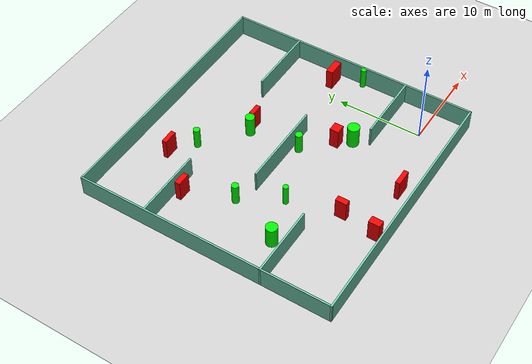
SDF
<sdf version="1.7">
 <world name="default">
  <light name="sun" type="directional">
   <pose>0 0 10 0 -0 0</pose>
   <diffuse>0.8 0.8 0.8 1</diffuse>
   <specular>0.2 0.2 0.2 1</specular>
   <attenuation>
    <range>1000</range>
    <constant>0.9</constant>
    <linear>0.01</linear>
    <quadratic>0.001</quadratic>
   </attenuation>
   <direction>-0.5 0.1 -0.9</direction>
   <spot><inner_angle>0</inner_angle><outer_angle>0</outer_angle><falloff>0</falloff></spot>
  </light>
  <model name="ground_plane">
   <static>1</static>
   <link name="link">
    <collision name="collision">
     <geometry><plane><normal>0 0 1</normal><size>100 100</size></plane></geometry>
     <surface>
      <contact><collide_bitmask>65535</collide_bitmask></contact>
      <friction><ode><mu>100</mu><mu2>50</mu2></ode></friction>
     </surface>
    </collision>
    <visual name="visual">
     <cast_shadows>0</cast_shadows>
     <geometry><plane><normal>0 0 1</normal><size>100 100</size></plane></geometry>
     <material>
      <script><uri>file://media/materials/scripts/gazebo.material</uri><name>Gazebo/Grey</name></script>
     </material>
    </visual>
   </link>
  </model>
  <gravity>0 0 -9.8</gravity>
  <magnetic_field>6e-06 2.3e-05 -4.2e-05</magnetic_field>
  <atmosphere type="adiabatic"/>
  <physics type="ode">
   <max_step_size>0.001</max_step_size>
   <real_time_factor>1</real_time_factor>
   <real_time_update_rate>1000</real_time_update_rate>
  </physics>
  <scene><ambient>0.4 0.4 0.4 1</ambient><background>0.7 0.7 0.7 1</background><shadows>1</shadows></scene>
  <spherical_coordinates>
   <surface_model>EARTH_WGS84</surface_model>
   <latitude_deg>0</latitude_deg>
   <longitude_deg>0</longitude_deg>
   <elevation>0</elevation>
   <heading_deg>0</heading_deg>
  </spherical_coordinates>
  <model name="my_base_walls">
   <link name="Wall_10">
    <collision name="Wall_10_Collision">
     <geometry><box><size>8.2 0.2 2.5</size></box></geometry>
     <pose>0 0 1.25 0 -0 0</pose>
    </collision>
    <visual name="Wall_10_Visual">
     <pose>0 0 1.25 0 -0 0</pose>
     <geometry><box><size>8.2 0.2 2.5</size></box></geometry>
     <material>
      <script><uri>file://media/materials/scripts/gazebo.material</uri><name>Gazebo/Grey</name></script>
      <ambient>0.435294 0.796078 0.67451 1</ambient>
     </material>
     <meta><layer>0</layer></meta>
    </visual>
    <pose>-11 -7 0 0 -0 0</pose>
   </link>
   <link name="Wall_12">
    <collision name="Wall_12_Collision">
     <geometry><box><size>8.2 0.2 2.5</size></box></geometry>
     <pose>0 0 1.25 0 -0 0</pose>
    </collision>
    <visual name="Wall_12_Visual">
     <pose>0 0 1.25 0 -0 0</pose>
     <geometry><box><size>8.2 0.2 2.5</size></box></geometry>
     <material>
      <script><uri>file://media/materials/scripts/gazebo.material</uri><name>Gazebo/Grey</name></script>
      <ambient>0.435294 0.796078 0.67451 1</ambient>
     </material>
     <meta><layer>0</layer></meta>
    </visual>
    <pose>-11 7 0 0 -0 0</pose>
   </link>
   <link name="Wall_14">
    <collision name="Wall_14_Collision">
     <geometry><box><size>8.2 0.2 2.5</size></box></geometry>
     <pose>0 0 1.25 0 -0 0</pose>
    </collision>
    <visual name="Wall_14_Visual">
     <pose>0 0 1.25 0 -0 0</pose>
     <geometry><box><size>8.2 0.2 2.5</size></box></geometry>
     <material>
      <script><uri>file://media/materials/scripts/gazebo.material</uri><name>Gazebo/Grey</name></script>
      <ambient>0.435294 0.796078 0.67451 1</ambient>
     </material>
     <meta><layer>0</layer></meta>
    </visual>
    <pose>11 7 0 0 -0 3.14159</pose>
   </link>
   <link name="Wall_16">
    <collision name="Wall_16_Collision">
     <geometry><box><size>10.2 0.2 2.5</size></box></geometry>
     <pose>0 0 1.25 0 -0 0</pose>
    </collision>
    <visual name="Wall_16_Visual">
     <pose>0 0 1.25 0 -0 0</pose>
     <geometry><box><size>10.2 0.2 2.5</size></box></geometry>
     <material>
      <script><uri>file://media/materials/scripts/gazebo.material</uri><name>Gazebo/Grey</name></script>
      <ambient>0.435294 0.796078 0.67451 1</ambient>
     </material>
     <meta><layer>0</layer></meta>
    </visual>
    <pose>0 0 0 0 -0 3.14159</pose>
   </link>
   <link name="Wall_2">
    <collision name="Wall_2_Collision">
     <geometry><box><size>30.2 0.2 2.5</size></box></geometry>
     <pose>0 0 1.25 0 -0 0</pose>
    </collision>
    <visual name="Wall_2_Visual">
     <pose>0 0 1.25 0 -0 0</pose>
     <geometry><box><size>30.2 0.2 2.5</size></box></geometry>
     <material>
      <script><uri>file://media/materials/scripts/gazebo.material</uri><name>Gazebo/Grey</name></script>
      <ambient>0.435294 0.796078 0.67451 1</ambient>
     </material>
     <meta><layer>0</layer></meta>
    </visual>
    <pose>0 -15 0 0 -0 3.14159</pose>
   </link>
   <link name="Wall_3">
    <collision name="Wall_3_Collision">
     <geometry><box><size>30.2 0.2 2.5</size></box></geometry>
     <pose>0 0 1.25 0 -0 0</pose>
    </collision>
    <visual name="Wall_3_Visual">
     <pose>0 0 1.25 0 -0 0</pose>
     <geometry><box><size>30.2 0.2 2.5</size></box></geometry>
     <material>
      <script><uri>file://media/materials/scripts/gazebo.material</uri><name>Gazebo/Grey</name></script>
      <ambient>0.435294 0.796078 0.67451 1</ambient>
     </material>
     <meta><layer>0</layer></meta>
    </visual>
    <pose>-15 0 0 0 -0 1.5708</pose>
   </link>
   <link name="Wall_4">
    <collision name="Wall_4_Collision">
     <geometry><box><size>30.2 0.2 2.5</size></box></geometry>
     <pose>0 0 1.25 0 -0 0</pose>
    </collision>
    <visual name="Wall_4_Visual">
     <pose>0 0 1.25 0 -0 0</pose>
     <geometry><box><size>30.2 0.2 2.5</size></box></geometry>
     <material>
      <script><uri>file://media/materials/scripts/gazebo.material</uri><name>Gazebo/Grey</name></script>
      <ambient>0.435294 0.796078 0.67451 1</ambient>
     </material>
     <meta><layer>0</layer></meta>
    </visual>
    <pose>0 15 0 0 -0 0</pose>
   </link>
   <link name="Wall_6">
    <collision name="Wall_6_Collision">
     <geometry><box><size>30.2 0.2 2.5</size></box></geometry>
     <pose>0 0 1.25 0 -0 0</pose>
    </collision>
    <visual name="Wall_6_Visual">
     <pose>0 0 1.25 0 -0 0</pose>
     <geometry><box><size>30.2 0.2 2.5</size></box></geometry>
     <material>
      <script><uri>file://media/materials/scripts/gazebo.material</uri><name>Gazebo/Grey</name></script>
      <ambient>0.435294 0.796078 0.67451 1</ambient>
     </material>
     <meta><layer>0</layer></meta>
    </visual>
    <pose>15 0 0 0 -0 1.5708</pose>
   </link>
   <link name="Wall_8">
    <collision name="Wall_8_Collision">
     <geometry><box><size>8.2 0.2 2.5</size></box></geometry>
     <pose>0 0 1.25 0 -0 0</pose>
    </collision>
    <visual name="Wall_8_Visual">
     <pose>0 0 1.25 0 -0 0</pose>
     <geometry><box><size>8.2 0.2 2.5</size></box></geometry>
     <material>
      <script><uri>file://media/materials/scripts/gazebo.material</uri><name>Gazebo/Grey</name></script>
      <ambient>0.435294 0.796078 0.67451 1</ambient>
     </material>
     <meta><layer>0</layer></meta>
    </visual>
    <pose>11 -7 0 0 -0 3.14159</pose>
   </link>
   <static>1</static>
   <pose>-11 11 0 0 -0 0</pose>
  </model>
  <model name="cylinder1">
   <static>1</static>
   <link name="link">
    <inertial>
     <mass>1</mass>
     <inertia><ixx>0.5</ixx><ixy>0</ixy><ixz>0</ixz><iyy>0.5</iyy><iyz>0</iyz><izz>1</izz></inertia>
    </inertial>
    <collision name="collision">
     <geometry><cylinder><radius>0.6588608692097204</radius><length>2.5</length></cylinder></geometry>
    </collision>
    <visual name="visual">
     <geometry><cylinder><radius>0.6588608692097204</radius><length>2.5</length></cylinder></geometry>
     <material>
      <ambient>0 1 0 1</ambient>
      <diffuse>0 1 0 1</diffuse>
      <specular>0.1 0.1 0.1 1</specular>
      <emissive>0 0 0 0</emissive>
     </material>
    </visual>
   </link>
   <pose>-21.079700979177783 5.824741486005301 1.25 0 0 0</pose>
  </model>
  <model name="cylinder2">
   <static>1</static>
   <link name="link">
    <inertial>
     <mass>1</mass>
     <inertia><ixx>0.5</ixx><ixy>0</ixy><ixz>0</ixz><iyy>0.5</iyy><iyz>0</iyz><izz>1</izz></inertia>
    </inertial>
    <collision name="collision">
     <geometry><cylinder><radius>0.5429759063405692</radius><length>2.5</length></cylinder></geometry>
    </collision>
    <visual name="visual">
     <geometry><cylinder><radius>0.5429759063405692</radius><length>2.5</length></cylinder></geometry>
     <material>
      <ambient>0 1 0 1</ambient>
      <diffuse>0 1 0 1</diffuse>
      <specular>0.1 0.1 0.1 1</specular>
      <emissive>0 0 0 0</emissive>
     </material>
    </visual>
   </link>
   <pose>-9.477219729239504 16.054110930725983 1.25 0 0 0</pose>
  </model>
  <model name="cylinder3">
   <static>1</static>
   <link name="link">
    <inertial>
     <mass>1</mass>
     <inertia><ixx>0.5</ixx><ixy>0</ixy><ixz>0</ixz><iyy>0.5</iyy><iyz>0</iyz><izz>1</izz></inertia>
    </inertial>
    <collision name="collision">
     <geometry><cylinder><radius>0.42039214176205736</radius><length>2.5</length></cylinder></geometry>
    </collision>
    <visual name="visual">
     <geometry><cylinder><radius>0.42039214176205736</radius><length>2.5</length></cylinder></geometry>
     <material>
      <ambient>0 1 0 1</ambient>
      <diffuse>0 1 0 1</diffuse>
      <specular>0.1 0.1 0.1 1</specular>
      <emissive>0 0 0 0</emissive>
     </material>
    </visual>
   </link>
   <pose>-8.8617584740701 10.158614350422233 1.25 0 0 0</pose>
  </model>
  <model name="cylinder4">
   <static>1</static>
   <link name="link">
    <inertial>
     <mass>1</mass>
     <inertia><ixx>0.5</ixx><ixy>0</ixy><ixz>0</ixz><iyy>0.5</iyy><iyz>0</iyz><izz>1</izz></inertia>
    </inertial>
    <collision name="collision">
     <geometry><cylinder><radius>0.6887621823845651</radius><length>2.5</length></cylinder></geometry>
    </collision>
    <visual name="visual">
     <geometry><cylinder><radius>0.6887621823845651</radius><length>2.5</length></cylinder></geometry>
     <material>
      <ambient>0 1 0 1</ambient>
      <diffuse>0 1 0 1</diffuse>
      <specular>0.1 0.1 0.1 1</specular>
      <emissive>0 0 0 0</emissive>
     </material>
    </visual>
   </link>
   <pose>-4.800286265602562 5.702615009515014 1.25 0 0 0</pose>
  </model>
  <model name="cylinder5">
   <static>1</static>
   <link name="link">
    <inertial>
     <mass>1</mass>
     <inertia><ixx>0.5</ixx><ixy>0</ixy><ixz>0</ixz><iyy>0.5</iyy><iyz>0</iyz><izz>1</izz></inertia>
    </inertial>
    <collision name="collision">
     <geometry><cylinder><radius>0.40455016917228187</radius><length>2.5</length></cylinder></geometry>
    </collision>
    <visual name="visual">
     <geometry><cylinder><radius>0.40455016917228187</radius><length>2.5</length></cylinder></geometry>
     <material>
      <ambient>0 1 0 1</ambient>
      <diffuse>0 1 0 1</diffuse>
      <specular>0.1 0.1 0.1 1</specular>
      <emissive>0 0 0 0</emissive>
     </material>
    </visual>
   </link>
   <pose>-18.503308411946787 11.949937320706242 1.25 0 0 0</pose>
  </model>
  <model name="cylinder6">
   <static>1</static>
   <link name="link">
    <inertial>
     <mass>1</mass>
     <inertia><ixx>0.5</ixx><ixy>0</ixy><ixz>0</ixz><iyy>0.5</iyy><iyz>0</iyz><izz>1</izz></inertia>
    </inertial>
    <collision name="collision">
     <geometry><cylinder><radius>0.3231415591336707</radius><length>2.5</length></cylinder></geometry>
    </collision>
    <visual name="visual">
     <geometry><cylinder><radius>0.3231415591336707</radius><length>2.5</length></cylinder></geometry>
     <material>
      <ambient>0 1 0 1</ambient>
      <diffuse>0 1 0 1</diffuse>
      <specular>0.1 0.1 0.1 1</specular>
      <emissive>0 0 0 0</emissive>
     </material>
    </visual>
   </link>
   <pose>3.697830380690437 9.213792347983535 1.25 0 0 0</pose>
  </model>
  <model name="cylinder7">
   <static>1</static>
   <link name="link">
    <inertial>
     <mass>1</mass>
     <inertia><ixx>0.5</ixx><ixy>0</ixy><ixz>0</ixz><iyy>0.5</iyy><iyz>0</iyz><izz>1</izz></inertia>
    </inertial>
    <collision name="collision">
     <geometry><cylinder><radius>0.31233046795954666</radius><length>2.5</length></cylinder></geometry>
    </collision>
    <visual name="visual">
     <geometry><cylinder><radius>0.31233046795954666</radius><length>2.5</length></cylinder></geometry>
     <material>
      <ambient>0 1 0 1</ambient>
      <diffuse>0 1 0 1</diffuse>
      <specular>0.1 0.1 0.1 1</specular>
      <emissive>0 0 0 0</emissive>
     </material>
    </visual>
   </link>
   <pose>-15.876511736081726 7.4343834582328014 1.25 0 0 0</pose>
  </model>
  <model name="cylinder8">
   <static>1</static>
   <link name="link">
    <inertial>
     <mass>1</mass>
     <inertia><ixx>0.5</ixx><ixy>0</ixy><ixz>0</ixz><iyy>0.5</iyy><iyz>0</iyz><izz>1</izz></inertia>
    </inertial>
    <collision name="collision">
     <geometry><cylinder><radius>0.3768140898488499</radius><length>2.5</length></cylinder></geometry>
    </collision>
    <visual name="visual">
     <geometry><cylinder><radius>0.3768140898488499</radius><length>2.5</length></cylinder></geometry>
     <material>
      <ambient>0 1 0 1</ambient>
      <diffuse>0 1 0 1</diffuse>
      <specular>0.1 0.1 0.1 1</specular>
      <emissive>0 0 0 0</emissive>
     </material>
    </visual>
   </link>
   <pose>-14.126471847855946 19.903482876588356 1.25 0 0 0</pose>
  </model>
  <model name="box1">
   <static>1</static>
   <link name="link">
    <inertial>
     <mass>1</mass>
     <inertia><ixx>0.083</ixx><ixy>0</ixy><ixz>0</ixz><iyy>0.083</iyy><iyz>0</iyz><izz>0.083</izz></inertia>
    </inertial>
    <collision name="collision">
     <geometry><box><size>0.6709827411372163 1.3224995567284539 2.5</size></box></geometry>
    </collision>
    <visual name="visual">
     <geometry><box><size>0.6709827411372163 1.3224995567284539 2.5</size></box></geometry>
     <material>
      <ambient>1 0 0 1</ambient>
      <diffuse>1 0 0 1</diffuse>
      <specular>0.1 0.1 0.1 1</specular>
      <emissive>0 0 0 0</emissive>
     </material>
    </visual>
    <sensor name="my_contact" type="contact">
     <contact><collision>box_collision</collision><topic>__default_topic__</topic></contact>
    </sensor>
   </link>
   <pose>-14.364546850001204 1.583392230391235 1.25 0 0 0</pose>
  </model>
  <model name="box2">
   <static>1</static>
   <link name="link">
    <inertial>
     <mass>1</mass>
     <inertia><ixx>0.083</ixx><ixy>0</ixy><ixz>0</ixz><iyy>0.083</iyy><iyz>0</iyz><izz>0.083</izz></inertia>
    </inertial>
    <collision name="collision">
     <geometry><box><size>0.8654461973571617 1.3161916533415368 2.5</size></box></geometry>
    </collision>
    <visual name="visual">
     <geometry><box><size>0.8654461973571617 1.3161916533415368 2.5</size></box></geometry>
     <material>
      <ambient>1 0 0 1</ambient>
      <diffuse>1 0 0 1</diffuse>
      <specular>0.1 0.1 0.1 1</specular>
      <emissive>0 0 0 0</emissive>
     </material>
    </visual>
    <sensor name="my_contact" type="contact">
     <contact><collision>box_collision</collision><topic>__default_topic__</topic></contact>
    </sensor>
   </link>
   <pose>-14.954459830845291 -2.631961254520516 1.25 0 0 0</pose>
  </model>
  <model name="box3">
   <static>1</static>
   <link name="link">
    <inertial>
     <mass>1</mass>
     <inertia><ixx>0.083</ixx><ixy>0</ixy><ixz>0</ixz><iyy>0.083</iyy><iyz>0</iyz><izz>0.083</izz></inertia>
    </inertial>
    <collision name="collision">
     <geometry><box><size>1.6927006408551473 0.5342480886423886 2.5</size></box></geometry>
    </collision>
    <visual name="visual">
     <geometry><box><size>1.6927006408551473 0.5342480886423886 2.5</size></box></geometry>
     <material>
      <ambient>1 0 0 1</ambient>
      <diffuse>1 0 0 1</diffuse>
      <specular>0.1 0.1 0.1 1</specular>
      <emissive>0 0 0 0</emissive>
     </material>
    </visual>
    <sensor name="my_contact" type="contact">
     <contact><collision>box_collision</collision><topic>__default_topic__</topic></contact>
    </sensor>
   </link>
   <pose>-16.575065875555694 21.807712048510876 1.25 0 0 0</pose>
  </model>
  <model name="box4">
   <static>1</static>
   <link name="link">
    <inertial>
     <mass>1</mass>
     <inertia><ixx>0.083</ixx><ixy>0</ixy><ixz>0</ixz><iyy>0.083</iyy><iyz>0</iyz><izz>0.083</izz></inertia>
    </inertial>
    <collision name="collision">
     <geometry><box><size>1.5663986252181086 0.6209990422229265 2.5</size></box></geometry>
    </collision>
    <visual name="visual">
     <geometry><box><size>1.5663986252181086 0.6209990422229265 2.5</size></box></geometry>
     <material>
      <ambient>1 0 0 1</ambient>
      <diffuse>1 0 0 1</diffuse>
      <specular>0.1 0.1 0.1 1</specular>
      <emissive>0 0 0 0</emissive>
     </material>
    </visual>
    <sensor name="my_contact" type="contact">
     <contact><collision>box_collision</collision><topic>__default_topic__</topic></contact>
    </sensor>
   </link>
   <pose>-20.674395488615453 17.15395583662593 1.25 0 0 0</pose>
  </model>
  <model name="box5">
   <static>1</static>
   <link name="link">
    <inertial>
     <mass>1</mass>
     <inertia><ixx>0.083</ixx><ixy>0</ixy><ixz>0</ixz><iyy>0.083</iyy><iyz>0</iyz><izz>0.083</izz></inertia>
    </inertial>
    <collision name="collision">
     <geometry><box><size>1.9872716009257783 0.7927715581142505 2.5</size></box></geometry>
    </collision>
    <visual name="visual">
     <geometry><box><size>1.9872716009257783 0.7927715581142505 2.5</size></box></geometry>
     <material>
      <ambient>1 0 0 1</ambient>
      <diffuse>1 0 0 1</diffuse>
      <specular>0.1 0.1 0.1 1</specular>
      <emissive>0 0 0 0</emissive>
     </material>
    </visual>
    <sensor name="my_contact" type="contact">
     <contact><collision>box_collision</collision><topic>__default_topic__</topic></contact>
    </sensor>
   </link>
   <pose>2.3037984710348915 12.352635640168394 1.25 0 0 0</pose>
  </model>
  <model name="box6">
   <static>1</static>
   <link name="link">
    <inertial>
     <mass>1</mass>
     <inertia><ixx>0.083</ixx><ixy>0</ixy><ixz>0</ixz><iyy>0.083</iyy><iyz>0</iyz><izz>0.083</izz></inertia>
    </inertial>
    <collision name="collision">
     <geometry><box><size>1.4200457514220093 0.546554121741877 2.5</size></box></geometry>
    </collision>
    <visual name="visual">
     <geometry><box><size>1.4200457514220093 0.546554121741877 2.5</size></box></geometry>
     <material>
      <ambient>1 0 0 1</ambient>
      <diffuse>1 0 0 1</diffuse>
      <specular>0.1 0.1 0.1 1</specular>
      <emissive>0 0 0 0</emissive>
     </material>
    </visual>
    <sensor name="my_contact" type="contact">
     <contact><collision>box_collision</collision><topic>__default_topic__</topic></contact>
    </sensor>
   </link>
   <pose>-8.24666232989889 16.22249984097147 1.25 0 0 0</pose>
  </model>
  <model name="box7">
   <static>1</static>
   <link name="link">
    <inertial>
     <mass>1</mass>
     <inertia><ixx>0.083</ixx><ixy>0</ixy><ixz>0</ixz><iyy>0.083</iyy><iyz>0</iyz><izz>0.083</izz></inertia>
    </inertial>
    <collision name="collision">
     <geometry><box><size>1.9548519358348793 0.5418567127142034 2.5</size></box></geometry>
    </collision>
    <visual name="visual">
     <geometry><box><size>1.9548519358348793 0.5418567127142034 2.5</size></box></geometry>
     <material>
      <ambient>1 0 0 1</ambient>
      <diffuse>1 0 0 1</diffuse>
      <specular>0.1 0.1 0.1 1</specular>
      <emissive>0 0 0 0</emissive>
     </material>
    </visual>
    <sensor name="my_contact" type="contact">
     <contact><collision>box_collision</collision><topic>__default_topic__</topic></contact>
    </sensor>
   </link>
   <pose>-8.36766550713142 -2.0761357142722296 1.25 0 0 0</pose>
  </model>
  <model name="box8">
   <static>1</static>
   <link name="link">
    <inertial>
     <mass>1</mass>
     <inertia><ixx>0.083</ixx><ixy>0</ixy><ixz>0</ixz><iyy>0.083</iyy><iyz>0</iyz><izz>0.083</izz></inertia>
    </inertial>
    <collision name="collision">
     <geometry><box><size>1.1263869859806124 1.0479384183130265 2.5</size></box></geometry>
    </collision>
    <visual name="visual">
     <geometry><box><size>1.1263869859806124 1.0479384183130265 2.5</size></box></geometry>
     <material>
      <ambient>1 0 0 1</ambient>
      <diffuse>1 0 0 1</diffuse>
      <specular>0.1 0.1 0.1 1</specular>
      <emissive>0 0 0 0</emissive>
     </material>
    </visual>
    <sensor name="my_contact" type="contact">
     <contact><collision>box_collision</collision><topic>__default_topic__</topic></contact>
    </sensor>
   </link>
   <pose>-5.839698193805106 7.226399906174915 1.25 0 0 0</pose>
  </model>
 </world>
</sdf>
